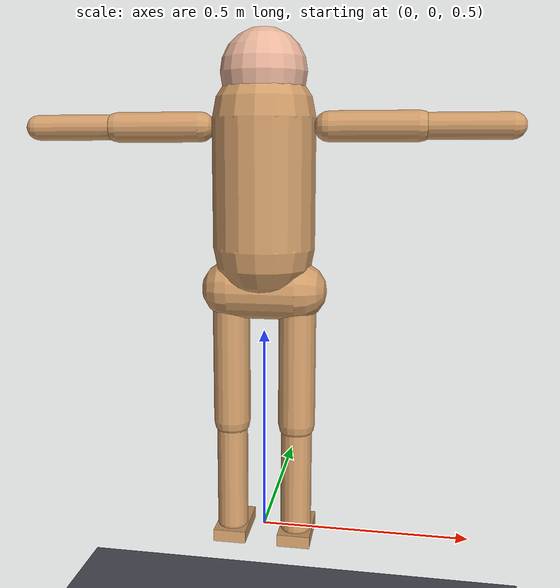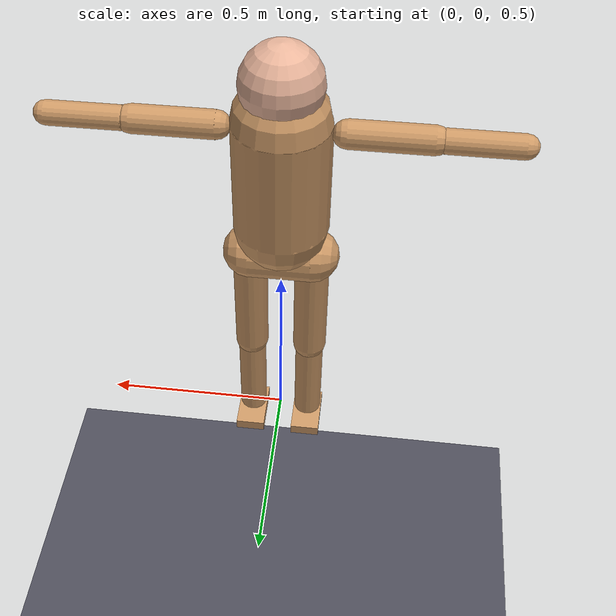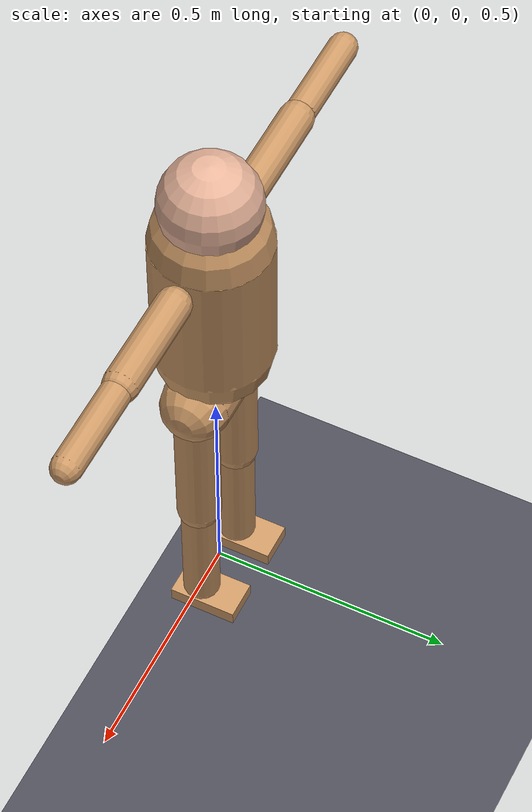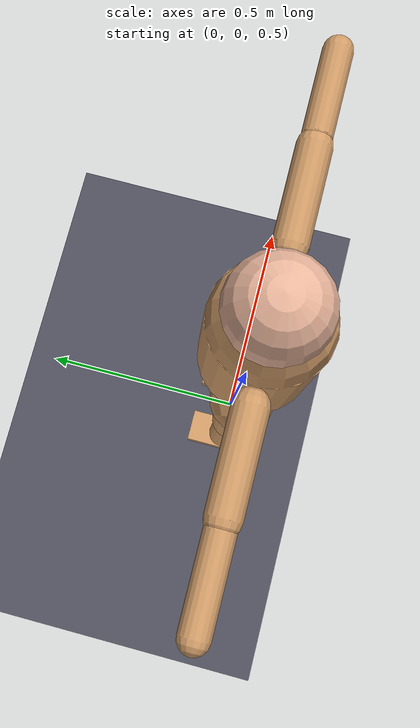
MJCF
<mujoco model="humanoid">
    <compiler angle="radian"/>
    <option gravity="0 0 -9.81" timestep="0.002"/>

    <default>
        <joint damping="5.0"/>
        <geom rgba="0.8 0.6 0.4 1"/>
    </default>

    <worldbody>
        <!-- Ground plane (visual reference, no collision) -->
        <geom type="plane" size="5 5 0.1" rgba="0.3 0.3 0.35 1" contype="0" conaffinity="0"/>

        <!-- Torso (floating base) -->
        <body name="torso" pos="0 0 1.2">
            <joint type="free"/>
            <geom type="capsule" fromto="0 0 0 0 0 0.3" size="0.12"/>
            <inertial pos="0 0 0.15" mass="10.0" diaginertia="0.5 0.5 0.2"/>

            <!-- Head -->
            <body name="head" pos="0 0 0.4">
                <joint name="neck" type="ball" damping="8.0"/>
                <geom type="sphere" size="0.1" rgba="0.9 0.7 0.6 1"/>
                <inertial pos="0 0 0" mass="1.0" diaginertia="0.01 0.01 0.01"/>
            </body>

            <!-- Left Arm -->
            <body name="left_upper_arm" pos="0.15 0 0.28">
                <joint name="left_shoulder" type="ball" damping="4.0"/>
                <geom type="capsule" fromto="0 0 0 0.2 0 0" size="0.035"/>
                <inertial pos="0.1 0 0" mass="1.0" diaginertia="0.01 0.01 0.005"/>

                <body name="left_lower_arm" pos="0.22 0 0">
                    <joint name="left_elbow" type="hinge" axis="0 1 0" range="-2.5 0" limited="true" damping="3.0"/>
                    <geom type="capsule" fromto="0 0 0 0.18 0 0" size="0.03"/>
                    <inertial pos="0.09 0 0" mass="0.5" diaginertia="0.005 0.005 0.002"/>
                </body>
            </body>

            <!-- Right Arm -->
            <body name="right_upper_arm" pos="-0.15 0 0.28">
                <joint name="right_shoulder" type="ball" damping="4.0"/>
                <geom type="capsule" fromto="0 0 0 -0.2 0 0" size="0.035"/>
                <inertial pos="-0.1 0 0" mass="1.0" diaginertia="0.01 0.01 0.005"/>

                <body name="right_lower_arm" pos="-0.22 0 0">
                    <joint name="right_elbow" type="hinge" axis="0 1 0" range="0 2.5" limited="true" damping="3.0"/>
                    <geom type="capsule" fromto="0 0 0 -0.18 0 0" size="0.03"/>
                    <inertial pos="-0.09 0 0" mass="0.5" diaginertia="0.005 0.005 0.002"/>
                </body>
            </body>

            <!-- Pelvis -->
            <body name="pelvis" pos="0 0 -0.1">
                <joint name="spine" type="ball" damping="15.0"/>
                <geom type="capsule" fromto="-0.08 0 0 0.08 0 0" size="0.07"/>
                <inertial pos="0 0 0" mass="5.0" diaginertia="0.2 0.2 0.1"/>

                <!-- Left Leg -->
                <body name="left_upper_leg" pos="0.08 0 -0.05">
                    <joint name="left_hip" type="ball" damping="8.0"/>
                    <geom type="capsule" fromto="0 0 0 0 0 -0.28" size="0.045"/>
                    <inertial pos="0 0 -0.14" mass="2.0" diaginertia="0.04 0.04 0.01"/>

                    <body name="left_lower_leg" pos="0 0 -0.3">
                        <joint name="left_knee" type="hinge" axis="1 0 0" range="-2.5 0" limited="true" damping="6.0"/>
                        <geom type="capsule" fromto="0 0 0 0 0 -0.25" size="0.038"/>
                        <inertial pos="0 0 -0.125" mass="1.5" diaginertia="0.03 0.03 0.008"/>

                        <body name="left_foot" pos="0 0 -0.27">
                            <joint name="left_ankle" type="ball" damping="3.0"/>
                            <geom type="box" size="0.04 0.07 0.015" pos="0 0.02 0"/>
                            <inertial pos="0 0.02 0" mass="0.3" diaginertia="0.002 0.002 0.001"/>
                        </body>
                    </body>
                </body>

                <!-- Right Leg -->
                <body name="right_upper_leg" pos="-0.08 0 -0.05">
                    <joint name="right_hip" type="ball" damping="8.0"/>
                    <geom type="capsule" fromto="0 0 0 0 0 -0.28" size="0.045"/>
                    <inertial pos="0 0 -0.14" mass="2.0" diaginertia="0.04 0.04 0.01"/>

                    <body name="right_lower_leg" pos="0 0 -0.3">
                        <joint name="right_knee" type="hinge" axis="1 0 0" range="-2.5 0" limited="true" damping="6.0"/>
                        <geom type="capsule" fromto="0 0 0 0 0 -0.25" size="0.038"/>
                        <inertial pos="0 0 -0.125" mass="1.5" diaginertia="0.03 0.03 0.008"/>

                        <body name="right_foot" pos="0 0 -0.27">
                            <joint name="right_ankle" type="ball" damping="3.0"/>
                            <geom type="box" size="0.04 0.07 0.015" pos="0 0.02 0"/>
                            <inertial pos="0 0.02 0" mass="0.3" diaginertia="0.002 0.002 0.001"/>
                        </body>
                    </body>
                </body>
            </body>
        </body>
    </worldbody>
</mujoco>
